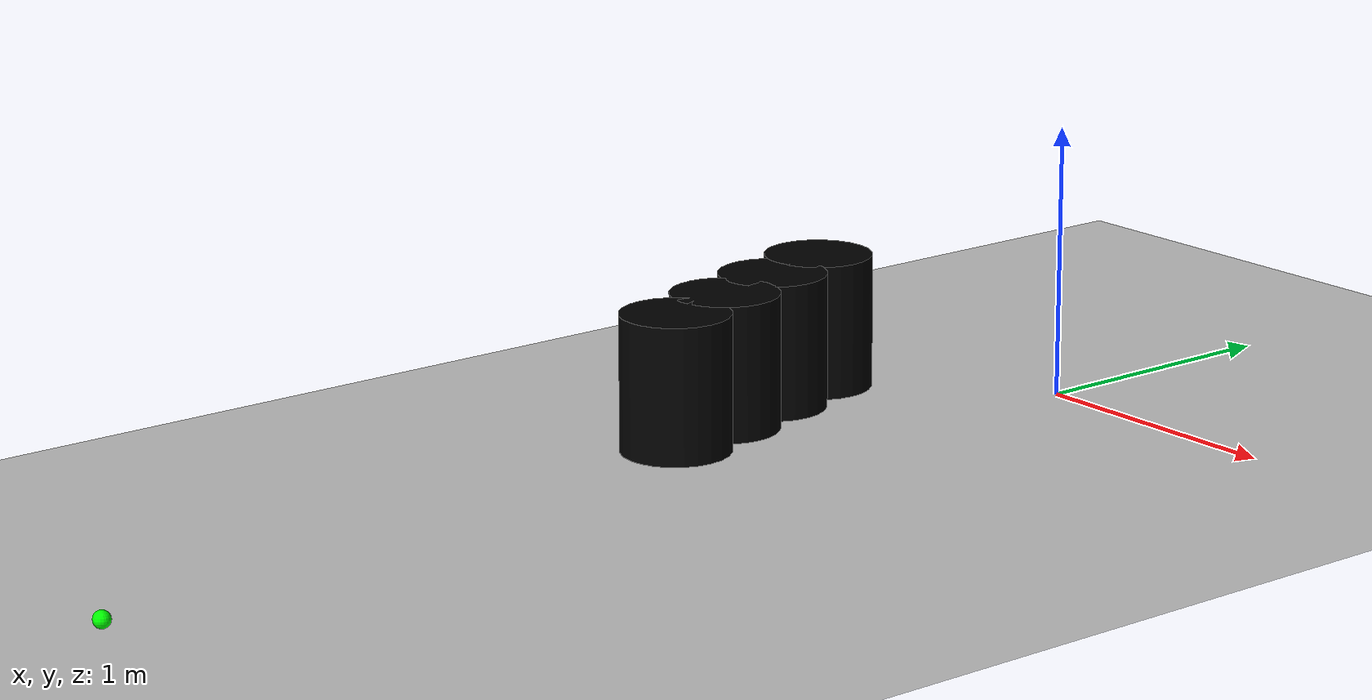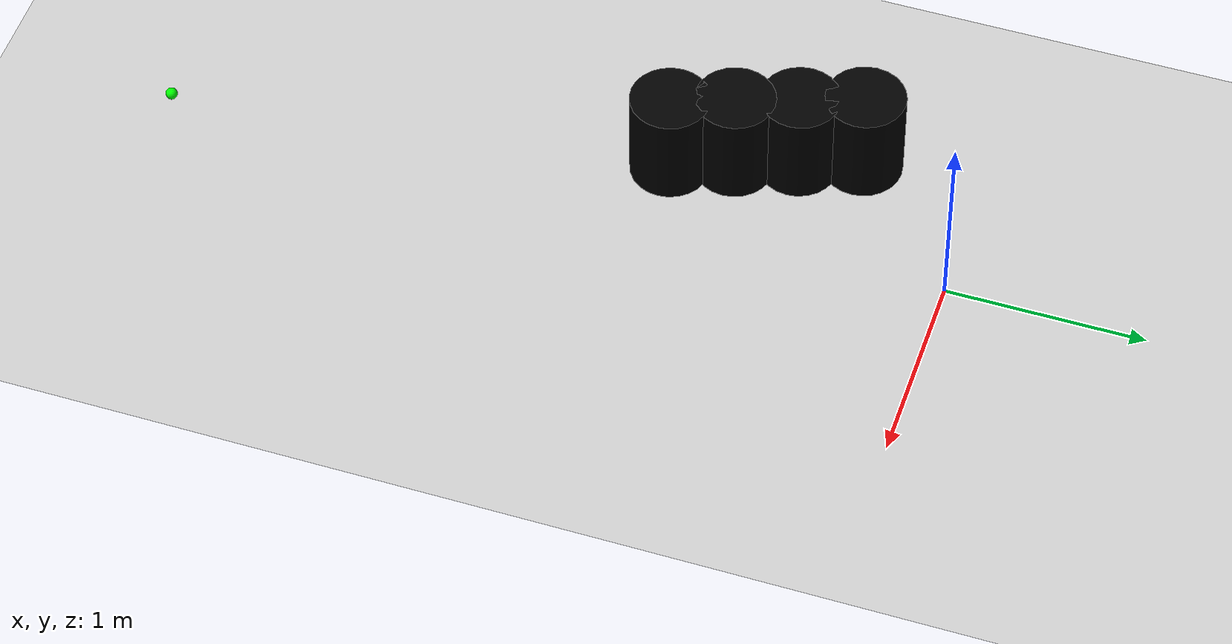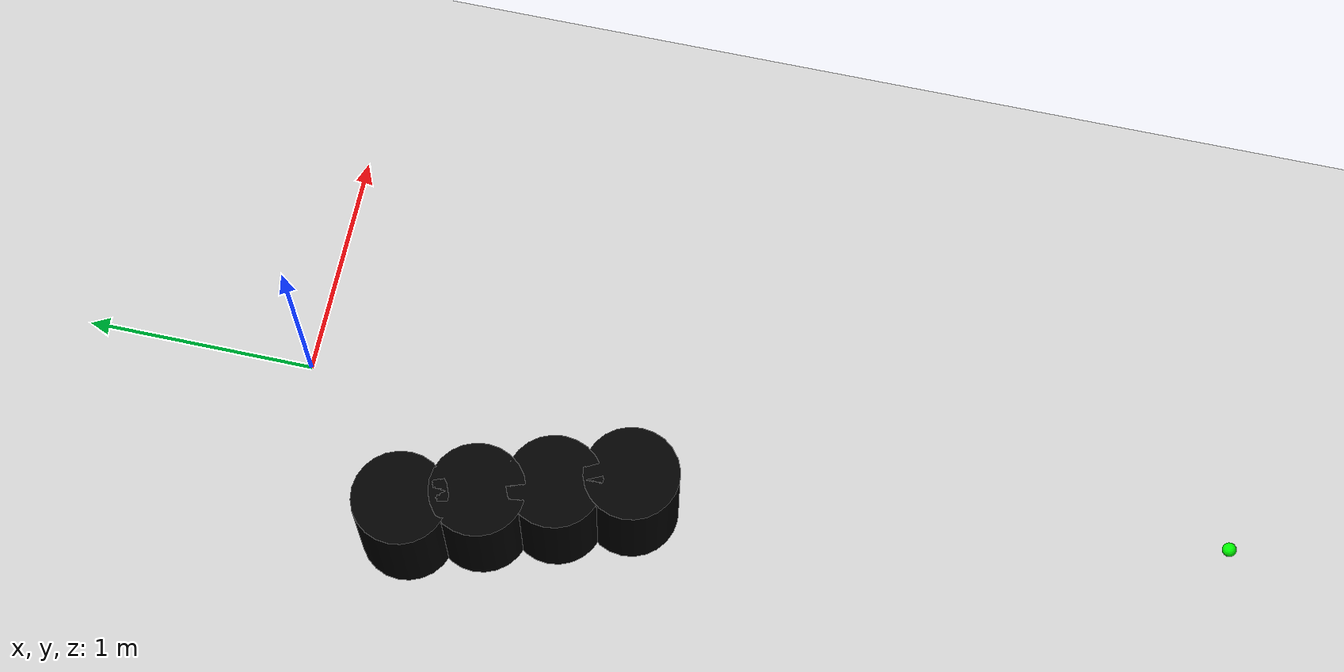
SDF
<?xml version="1.0" ?>
<sdf version="1.6">
  <world name="occlusion_world">
    <include>
      <uri>model://sun</uri>
    </include>
    <include>
      <uri>model://ground_plane</uri>
    </include>

    <gui fullscreen='0'>
      <camera name='user_camera'>
        <pose>12.0 4.0 18.0 0 1.5708 0</pose>
      </camera>
    </gui>

    <model name='cylinder_1'>
      <pose>-0.65 -0.6 0.25 0 0 0</pose>
      <static>true</static>
      <link name='link'>
        <collision name='collision'>
          <geometry><cylinder><radius>0.2</radius><length>0.5</length></cylinder></geometry>
        </collision>
        <visual name='visual'>
          <geometry><cylinder><radius>0.2</radius><length>0.5</length></cylinder></geometry>
          <material>
            <ambient>0 0 0 1</ambient>
            <diffuse>0 0 0 1</diffuse>
            <specular>0 0 0 1</specular>
            <emissive>0 0 0 1</emissive>
          </material>
        </visual>
      </link>
    </model>

    <model name='cylinder_2'>
      <pose>-0.55 -0.9 0.25 0 0 0</pose>
      <static>true</static>
      <link name='link'>
        <collision name='collision'>
          <geometry><cylinder><radius>0.2</radius><length>0.5</length></cylinder></geometry>
        </collision>
        <visual name='visual'>
          <geometry><cylinder><radius>0.2</radius><length>0.5</length></cylinder></geometry>
          <material>
            <ambient>0 0 0 1</ambient>
            <diffuse>0 0 0 1</diffuse>
            <specular>0 0 0 1</specular>
            <emissive>0 0 0 1</emissive>
          </material>
        </visual>
      </link>
    </model>

    <model name='cylinder_3'>
      <pose>-0.45 -1.2 0.25 0 0 0</pose>
      <static>true</static>
      <link name='link'>
        <collision name='collision'>
          <geometry><cylinder><radius>0.2</radius><length>0.5</length></cylinder></geometry>
        </collision>
        <visual name='visual'>
          <geometry><cylinder><radius>0.2</radius><length>0.5</length></cylinder></geometry>
          <material>
            <ambient>0 0 0 1</ambient>
            <diffuse>0 0 0 1</diffuse>
            <specular>0 0 0 1</specular>
            <emissive>0 0 0 1</emissive>
          </material>
        </visual>
      </link>
    </model>

    <model name='cylinder_4'>
      <pose>-0.35 -1.5 0.25 0 0 0</pose>
      <static>true</static>
      <link name='link'>
        <collision name='collision'>
          <geometry><cylinder><radius>0.2</radius><length>0.5</length></cylinder></geometry>
        </collision>
        <visual name='visual'>
          <geometry><cylinder><radius>0.2</radius><length>0.5</length></cylinder></geometry>
          <material>
            <ambient>0 0 0 1</ambient>
            <diffuse>0 0 0 1</diffuse>
            <specular>0 0 0 1</specular>
            <emissive>0 0 0 1</emissive>
          </material>
        </visual>
      </link>
    </model>

    <model name='green_goal_dot'>
      <pose>0.0 -4.0 0.05 0 0 0</pose>
      <static>true</static>
      <link name='link'>
        <visual name='visual'>
          <geometry><sphere><radius>0.03</radius></sphere></geometry>
          <material>
            <ambient>0 1 0 1</ambient>
            <diffuse>0 1 0 1</diffuse>
            <specular>0 1 0 1</specular>
            <emissive>0 1 0 1</emissive>
          </material>
        </visual>
      </link>
    </model>

  </world>
</sdf>
